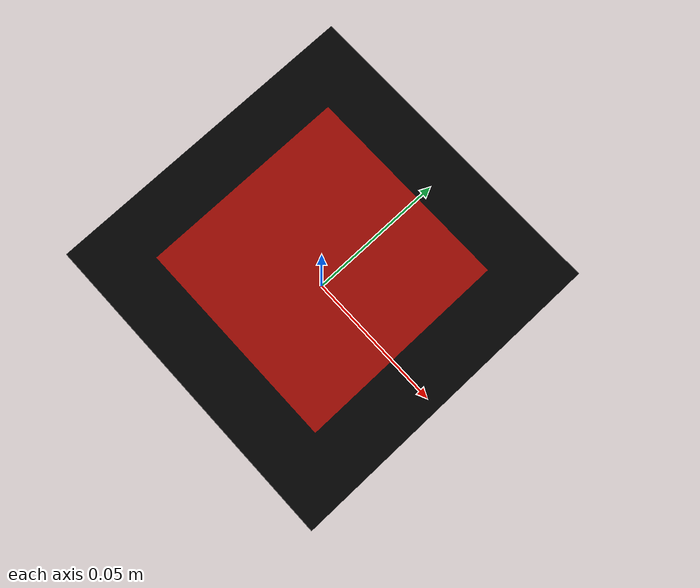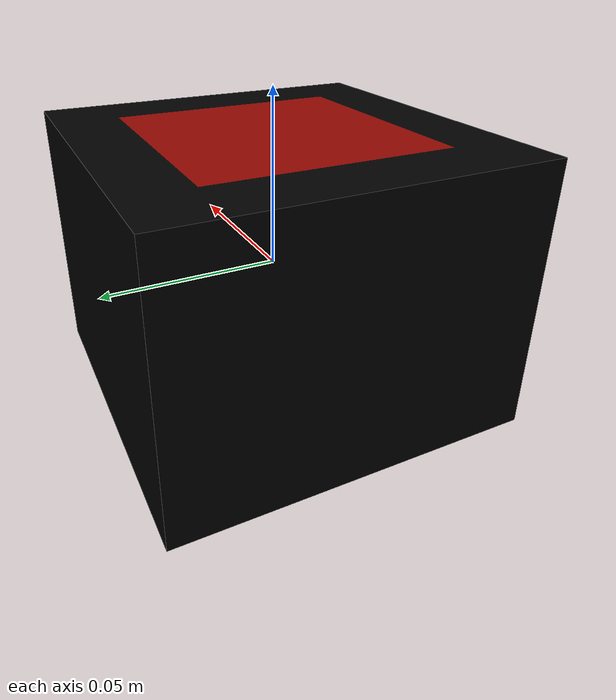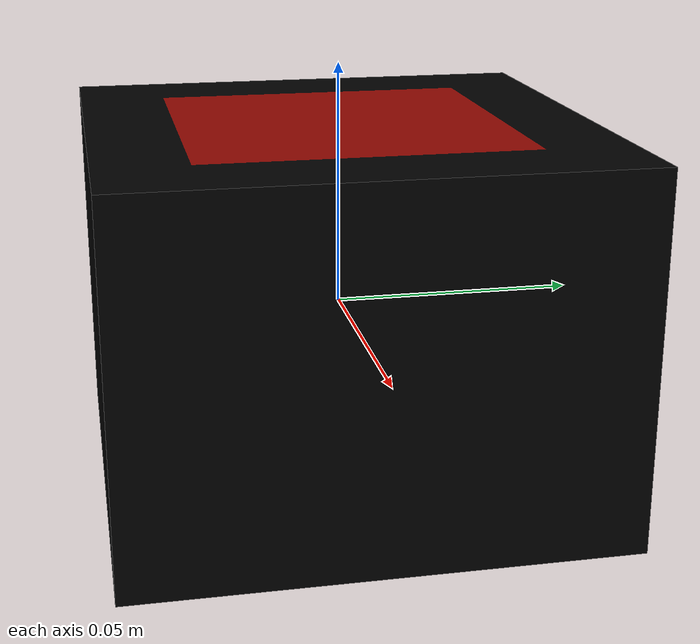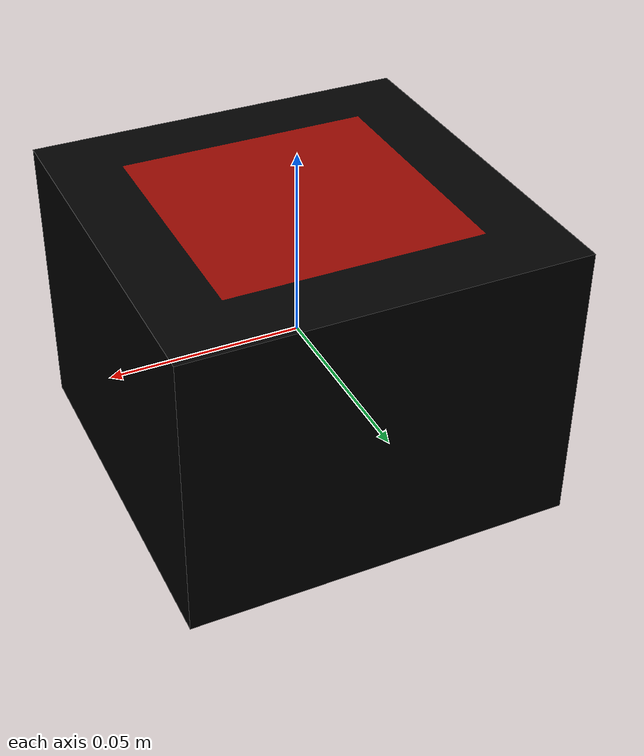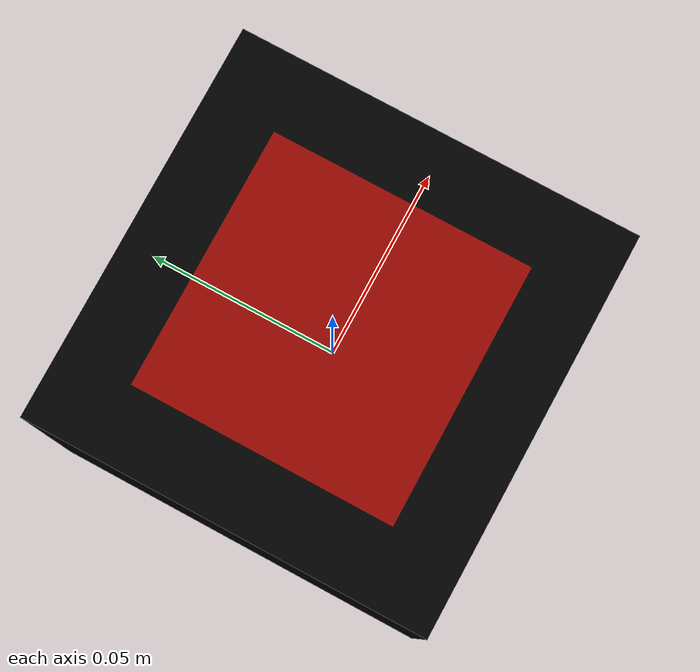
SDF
<?xml version="1.0"?>
<sdf version="1.6">
  <model name="vanadinite_ore">
    <static>false</static>
    <link name="vanadinite_ore_link">

      <inertial>
        <pose>0 0 0.000000 0 0 0</pose>
        <mass>0.1500</mass>
        <inertia>
          <ixx>0.00020161</ixx><ixy>0</ixy><ixz>0</ixz>
          <iyy>0.00020161</iyy><iyz>0</iyz>
          <izz>0.00025806</izz>
        </inertia>
      </inertial>

      <visual name="visual">
        <geometry>
          <mesh><uri>model://vanadinite_ore/meshes/vanadinite_ore.dae</uri></mesh>
        </geometry>
      </visual>

      <collision name="collision">
        <pose>0 0 0.000000 0 0 0</pose>
        <geometry>
          <box><size>0.1016 0.1016 0.0762</size></box>
        </geometry>
        <surface>
          <friction>
            <ode><mu>1.0</mu><mu2>1.0</mu2></ode>
          </friction>
        </surface>
      </collision>

    </link>
  </model>
</sdf>
